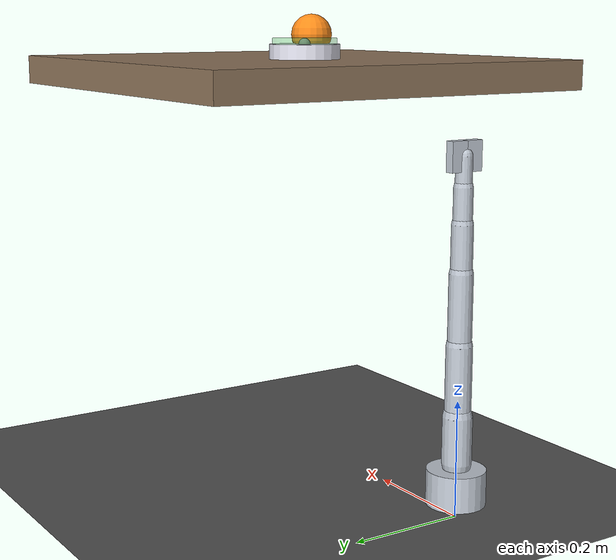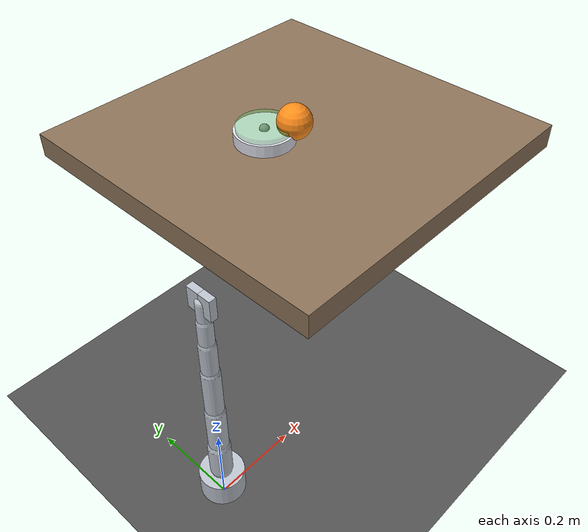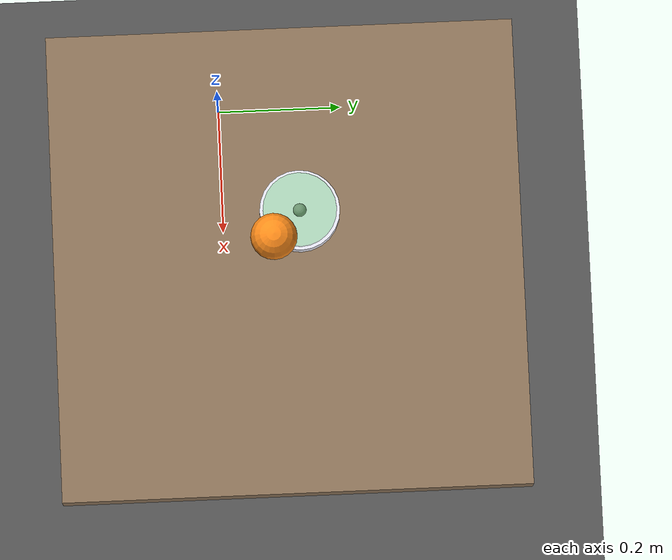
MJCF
<?xml version="1.0" encoding="utf-8"?>
<mujoco model="d1_replay_h2_grasp">
  <compiler angle="degree" coordinate="local"/>
  <option gravity="0 0 -9.81" timestep="0.002" integrator="implicitfast"/>

  <default>
    <geom friction="1.0 0.1 0.01" solref="0.02 1" solimp="0.9 0.95 0.001"/>
    <joint damping="2"/>
  </default>

  <visual>
    <global offwidth="640" offheight="480"/>
    <quality shadowsize="2048"/>
  </visual>

  <asset>
    <texture name="grid" type="2d" builtin="checker" width="512" height="512"
             rgb1="0.25 0.25 0.25" rgb2="0.4 0.4 0.4"/>
    <material name="grid" texture="grid" texrepeat="8 8"/>
    <material name="link" rgba="0.75 0.78 0.82 1"/>
    <material name="table" rgba="0.55 0.45 0.35 1"/>
    <material name="orange" rgba="1.0 0.55 0.1 1"/>
    <material name="bowl" rgba="0.9 0.9 0.95 1"/>
    <material name="bowl_zone" rgba="0.3 0.75 0.35 0.35"/>
  </asset>

  <worldbody>
    <light pos="0.5 0 1.5" dir="-0.3 0 -1" diffuse="1 1 1"/>
    <geom name="floor" type="plane" size="2 2 0.05" material="grid"/>

    <!-- 桌面 -->
    <geom name="table" type="box" pos="0.35 0.1 0.725" size="0.35 0.35 0.025" material="table"/>

    <!-- 场景相机：meta 外参近似 -->
    <body name="camera_mount" pos="0.665 0.315 0.895" euler="0 45 0">
      <camera name="scene_cam" pos="0 0 0" fovy="58"/>
    </body>

    <!-- 碗（放置目标区） -->
    <body name="bowl" pos="0.28 0.12 0.755">
      <geom name="bowl_geom" type="cylinder" size="0.06 0.02" material="bowl"
            contype="1" conaffinity="1" mass="0.2"/>
      <geom name="bowl_zone" type="cylinder" size="0.055 0.005" pos="0 0 0.025"
            material="bowl_zone" contype="0" conaffinity="0"/>
      <site name="bowl_center" pos="0 0 0.02" size="0.01"/>
    </body>

    <!-- 橙子（可物理交互） -->
    <body name="orange" pos="0.32 0.08 0.79">
      <freejoint name="orange_free"/>
      <geom name="orange_geom" type="sphere" size="0.035" material="orange"
            mass="0.15" contype="1" conaffinity="1"/>
      <site name="orange_center" pos="0 0 0" size="0.01"/>
    </body>

    <!-- D1 机械臂 -->
    <body name="base" pos="0 0 0.055">
      <geom type="cylinder" size="0.05 0.03" material="link"/>
      <body name="link1" pos="0 0 0.04">
        <joint name="j0" type="hinge" axis="0 0 1" range="-135 135"/>
        <geom type="capsule" fromto="0 0 0 0 0 0.08" size="0.025" material="link"/>
        <body name="link2" pos="0 0 0.08">
          <joint name="j1" type="hinge" axis="0 1 0" range="-90 90"/>
          <geom type="capsule" fromto="0 0 0 0 0 0.12" size="0.022" material="link"/>
          <body name="link3" pos="0 0 0.12">
            <joint name="j2" type="hinge" axis="0 1 0" range="-90 90"/>
            <geom type="capsule" fromto="0 0 0 0 0 0.12" size="0.02" material="link"/>
            <body name="link4" pos="0 0 0.12">
              <joint name="j3" type="hinge" axis="0 1 0" range="-135 135"/>
              <geom type="capsule" fromto="0 0 0 0 0 0.08" size="0.018" material="link"/>
              <body name="link5" pos="0 0 0.08">
                <joint name="j4" type="hinge" axis="0 1 0" range="-90 90"/>
                <geom type="capsule" fromto="0 0 0 0 0 0.06" size="0.016" material="link"/>
                <body name="link6" pos="0 0 0.06">
                  <joint name="j5" type="hinge" axis="0 0 1" range="-135 135"/>
                  <geom type="capsule" fromto="0 0 0 0 0 0.05" size="0.014" material="link"/>
                  <body name="ee" pos="0 0 0.05">
                    <joint name="j6" type="slide" axis="0 1 0" range="-0.03 0.02"/>
                    <geom name="gripper_l" type="box" pos="0 0.015 0" size="0.008 0.015 0.025" material="link"/>
                    <geom name="gripper_r" type="box" pos="0 -0.015 0" size="0.008 0.015 0.025" material="link"/>
                    <site name="ee_tip" pos="0 0 0" size="0.005"/>
                    <camera name="wrist_cam" pos="0.03 0 0" quat="0.707 0 0.707 0" fovy="60"/>
                  </body>
                </body>
              </body>
            </body>
          </body>
        </body>
      </body>
    </body>
  </worldbody>

  <actuator>
    <position name="a_j0" joint="j0" kp="180" kv="12"/>
    <position name="a_j1" joint="j1" kp="180" kv="12"/>
    <position name="a_j2" joint="j2" kp="180" kv="12"/>
    <position name="a_j3" joint="j3" kp="180" kv="12"/>
    <position name="a_j4" joint="j4" kp="180" kv="12"/>
    <position name="a_j5" joint="j5" kp="180" kv="12"/>
    <position name="a_j6" joint="j6" kp="150" kv="12"/>
  </actuator>
</mujoco>
